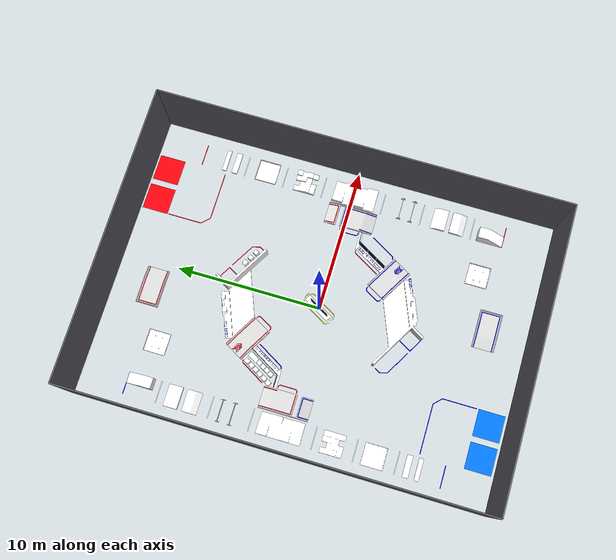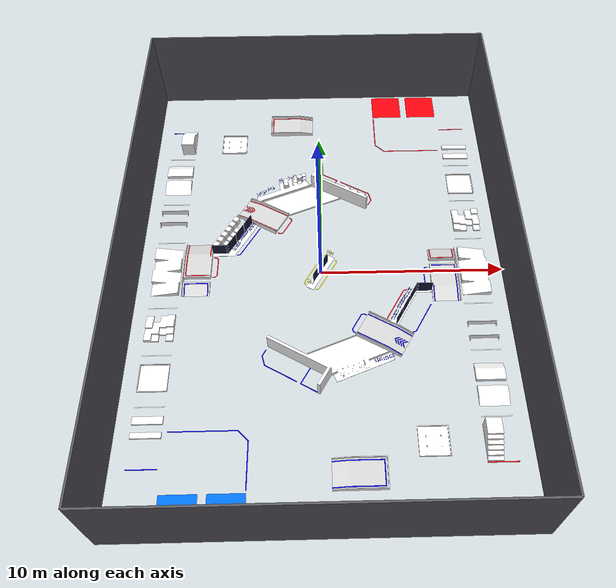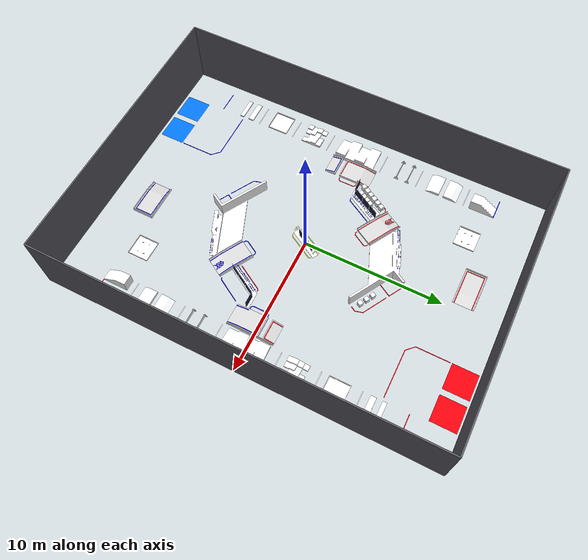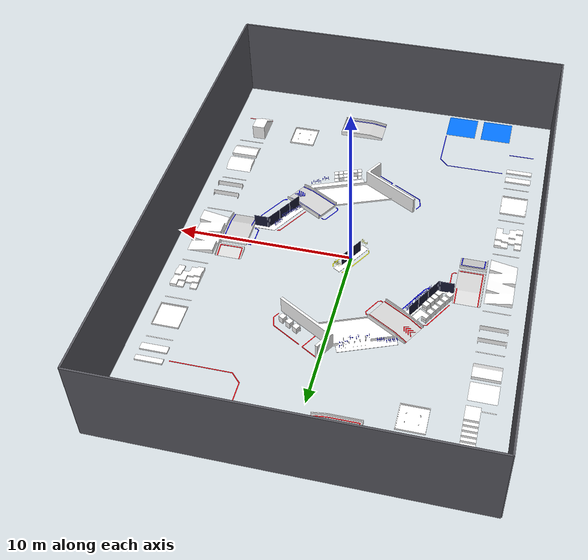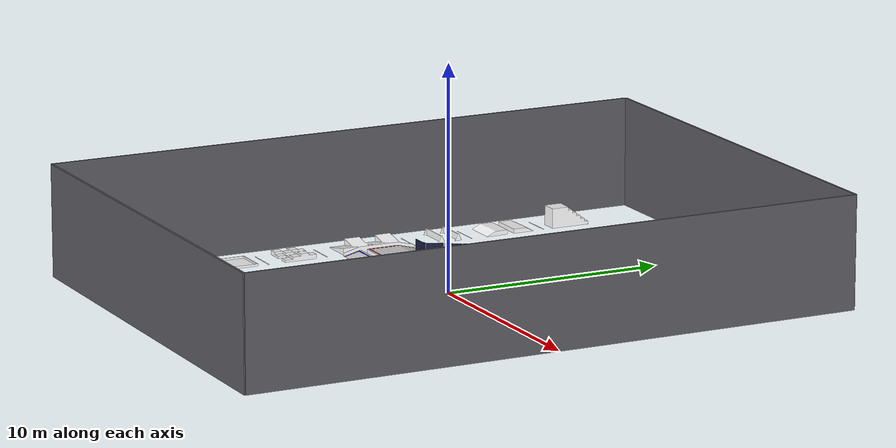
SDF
<sdf version="1.7">
 <world name="core_stage">
  <light name="sun" type="directional">
   <pose>0 0 20 0 0 0</pose>
   <diffuse>1.0 1.0 1.0 1.0</diffuse>
   <direction>-0.4 0.3 -0.9</direction>
  </light>
  <model name="core_stage_06">
   <static>true</static>
   <link name="link">
    <visual name="visual">
     <geometry><mesh><uri>../meshes/STL/core_stage_06.stl</uri></mesh></geometry>
     <material><diffuse>0.2471 0.2471 0.2471 1</diffuse></material>
    </visual>
   </link>
  </model>
  <model name="core_stage_07">
   <static>true</static>
   <link name="link">
    <visual name="visual">
     <geometry><mesh><uri>../meshes/STL/core_stage_07.stl</uri></mesh></geometry>
     <material><diffuse>0.0 0.0 1.0 1</diffuse></material>
    </visual>
   </link>
  </model>
  <model name="core_stage_08">
   <static>true</static>
   <link name="link">
    <visual name="visual">
     <geometry><mesh><uri>../meshes/STL/core_stage_08.stl</uri></mesh></geometry>
     <material><diffuse>0.6902 0.6902 0.6902 1</diffuse></material>
    </visual>
   </link>
  </model>
  <model name="core_stage_09">
   <static>true</static>
   <link name="link">
    <visual name="visual">
     <geometry><mesh><uri>../meshes/STL/core_stage_09.stl</uri></mesh></geometry>
     <material><diffuse>1.0 1.0 1.0 1</diffuse></material>
    </visual>
   </link>
  </model>
  <model name="core_stage_10">
   <static>true</static>
   <link name="link">
    <visual name="visual">
     <geometry><mesh><uri>../meshes/STL/core_stage_10.stl</uri></mesh></geometry>
     <material><diffuse>1.0 1.0 0.0 1</diffuse></material>
    </visual>
   </link>
  </model>
  <model name="core_stage_11">
   <static>true</static>
   <link name="link">
    <visual name="visual">
     <geometry><mesh><uri>../meshes/STL/core_stage_11.stl</uri></mesh></geometry>
     <material><diffuse>0.298 0.298 0.298 1</diffuse></material>
    </visual>
   </link>
  </model>
  <model name="core_stage_12">
   <static>true</static>
   <link name="link">
    <visual name="visual">
     <geometry><mesh><uri>../meshes/STL/core_stage_12.stl</uri></mesh></geometry>
     <material><diffuse>0.8235 0.8235 0.8235 1</diffuse></material>
    </visual>
   </link>
  </model>
  <model name="core_stage_13">
   <static>true</static>
   <link name="link">
    <visual name="visual">
     <geometry><mesh><uri>../meshes/STL/core_stage_13.stl</uri></mesh></geometry>
     <material><diffuse>0.0941 0.1059 0.2196 1</diffuse></material>
    </visual>
   </link>
  </model>
  <model name="core_stage_14">
   <static>true</static>
   <link name="link">
    <visual name="visual">
     <geometry><mesh><uri>../meshes/STL/core_stage_14.stl</uri></mesh></geometry>
     <material><diffuse>1.0 0.0 0.0431 1</diffuse></material>
    </visual>
   </link>
  </model>
  <model name="core_stage_15">
   <static>true</static>
   <link name="link">
    <visual name="visual">
     <geometry><mesh><uri>../meshes/STL/core_stage_15.stl</uri></mesh></geometry>
     <material><diffuse>0.0 0.4471 1.0 1</diffuse></material>
    </visual>
   </link>
  </model>
  <model name="Wall">
   <static>true</static>
   <pose>-10.0 0.0 2.5 0 0 0.0</pose>
   <link name="link">
    <visual name="visual">
     <geometry><box><size>0.1 28.0 5.0</size></box></geometry>
     <material><diffuse>0.35 0.35 0.38 1</diffuse></material>
    </visual>
   </link>
  </model>
  <model name="Wall_01">
   <static>true</static>
   <pose>10.0 0.0 2.5 0 0 0.0</pose>
   <link name="link">
    <visual name="visual">
     <geometry><box><size>0.1 28.0 5.0</size></box></geometry>
     <material><diffuse>0.35 0.35 0.38 1</diffuse></material>
    </visual>
   </link>
  </model>
  <model name="Wall_02">
   <static>true</static>
   <pose>0.0 14.0 2.5 0 0 1.570796</pose>
   <link name="link">
    <visual name="visual">
     <geometry><box><size>0.1 20.0 5.0</size></box></geometry>
     <material><diffuse>0.35 0.35 0.38 1</diffuse></material>
    </visual>
   </link>
  </model>
  <model name="Wall_03">
   <static>true</static>
   <pose>0.0 -14.0 2.5 0 0 1.570796</pose>
   <link name="link">
    <visual name="visual">
     <geometry><box><size>0.1 20.0 5.0</size></box></geometry>
     <material><diffuse>0.35 0.35 0.38 1</diffuse></material>
    </visual>
   </link>
  </model>
 </world>
</sdf>
